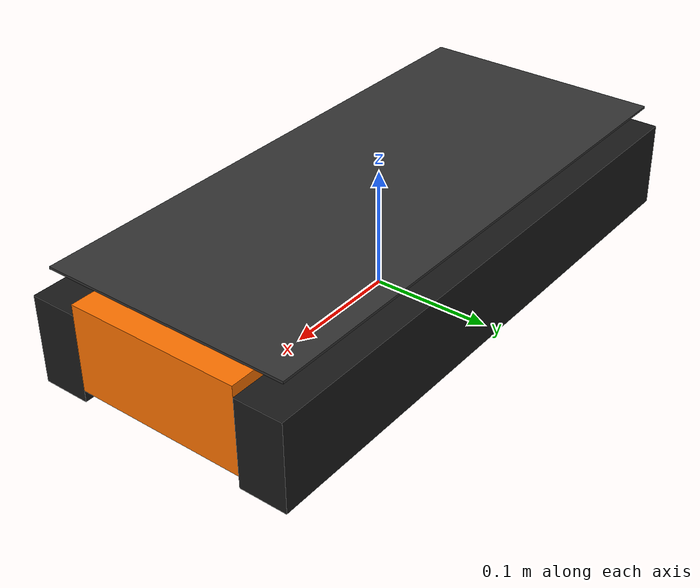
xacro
<?xml version="1.0"?>
<robot name="tracked_robot" xmlns:xacro="http://www.ros.org/wiki/xacro">

  <material name="Orange"><color rgba="1.0 0.45 0.0 1.0"/></material>
  <material name="Black"><color rgba="0.1 0.1 0.1 1.0"/></material>
  <material name="Steel"><color rgba="0.75 0.75 0.8 1.0"/></material>
  <material name="Rubber"><color rgba="0.2 0.2 0.2 1.0"/></material>

  <link name="base_footprint"/>
  <joint name="base_joint" type="fixed">
    <parent link="base_footprint"/>
    <child link="base_link"/>
    <origin xyz="0 0 0" rpy="0 0 0"/>
  </joint>

  <!-- ================= ОСНОВНОЙ КОРПУС ================= -->
  <!-- Размеры по ТЗ: Длина 492 мм, Ширина 225 мм, Высота шасси 93 мм (с подушкой 95 мм) -->
  <link name="base_link">
    <!-- Визуальный корпус -->
    <visual>
      <origin xyz="0 0 0.0465"/>
      <geometry><box size="0.492 0.145 0.073"/></geometry>
      <material name="Orange"/>
    </visual>
    <!-- Левая гусеничная балка (высота 74 мм) -->
    <visual>
      <origin xyz="0 0.0925 0.037"/>
      <geometry><box size="0.492 0.04 0.074"/></geometry>
      <material name="Black"/>
    </visual>
    <!-- Правая гусеничная балка (высота 74 мм) -->
    <visual>
      <origin xyz="0 -0.0925 0.037"/>
      <geometry><box size="0.492 0.04 0.074"/></geometry>
      <material name="Black"/>
    </visual>

    <!-- Коллизия корпуса: ширина 216 мм для гарантированного отсутствия заклинивания в проёме 227 мм -->
    <collision>
      <origin xyz="0 0 0.0465"/>
      <geometry><box size="0.488 0.216 0.073"/></geometry>
    </collision>

    <inertial>
      <origin xyz="0 0 0.045"/>
      <mass value="25.0"/>
      <inertia ixx="0.15" ixy="0" ixz="0" iyy="0.55" iyz="0" izz="0.65"/>
    </inertial>
  </link>

  <!-- Скользящие борта шасси (тефлон, чтобы не залипать на деревянных шашках поддона) -->
  <gazebo reference="base_link">
    <mu1>0.05</mu1>
    <mu2>0.05</mu2>
  </gazebo>

  <!-- ================= ПРИВОДНЫЕ КОЛЕСА (СКРЫТЫ В ГУСЕНИЦАХ) ================= -->
  <xacro:macro name="track_wheel" params="name x y">
    <link name="${name}_link">
      <collision>
        <origin rpy="${pi/2} 0 0"/>
        <geometry><cylinder radius="0.037" length="0.038"/></geometry>
      </collision>
      <inertial>
        <mass value="1.0"/>
        <inertia ixx="0.001" ixy="0" ixz="0" iyy="0.001" iyz="0" izz="0.001"/>
      </inertial>
    </link>

    <joint name="${name}_joint" type="continuous">
      <parent link="base_link"/>
      <child link="${name}_link"/>
      <origin xyz="${x} ${y} 0.037"/>
      <axis xyz="0 1 0"/>
    </joint>

    <gazebo reference="${name}_link">
      <mu1>1.8</mu1>
      <mu2>1.8</mu2>
    </gazebo>
  </xacro:macro>

  <xacro:track_wheel name="wheel_fl" x="0.18" y="0.0925"/>
  <xacro:track_wheel name="wheel_rl" x="-0.18" y="0.0925"/>
  <xacro:track_wheel name="wheel_fr" x="0.18" y="-0.0925"/>
  <xacro:track_wheel name="wheel_rr" x="-0.18" y="-0.0925"/>

  <!-- ================= ПНЕВМОПОДЪЕМНИК ================= -->
  <!-- Высота в сложенном виде: 2 мм (с 93 мм до 95 мм). Ход: 45 мм -->
  <link name="lift_plate_link">
    <visual>
      <origin xyz="0 0 0.001"/>
      <geometry><box size="0.470 0.210 0.002"/></geometry>
      <material name="Rubber"/>
    </visual>
    <collision>
      <origin xyz="0 0 0.001"/>
      <geometry><box size="0.470 0.210 0.002"/></geometry>
    </collision>
    <inertial>
      <mass value="3.0"/>
      <inertia ixx="0.01" ixy="0" ixz="0" iyy="0.05" iyz="0" izz="0.06"/>
    </inertial>
  </link>

  <joint name="lift_joint" type="prismatic">
    <parent link="base_link"/>
    <child link="lift_plate_link"/>
    <!-- Установлен ровно на отметке 93 мм от пола: 93 + 2 = 95 мм общая высота -->
    <origin xyz="0 0 0.093"/>
    <axis xyz="0 0 1"/>
    <!-- Ход от 0 до 45 мм с усилием пневматики 4000 Н (грузоподъемность > 300 кг) -->
    <limit lower="0.0" upper="0.045" effort="4000" velocity="0.04"/>
    <dynamics damping="80.0" friction="5.0"/>
  </joint>

  <!-- Высокое трение площадки, чтобы поддон не соскальзывал при подъёме -->
  <gazebo reference="lift_plate_link">
    <mu1>2.0</mu1>
    <mu2>2.0</mu2>
  </gazebo>

  <!-- ================= ПЛАГИНЫ ДЛЯ GAZEBO HARMONIC ================= -->
  <gazebo>
    <plugin filename="gz-sim-diff-drive-system" name="gz::sim::systems::DiffDrive">
      <left_joint>wheel_fl_joint</left_joint>
      <left_joint>wheel_rl_joint</left_joint>
      <right_joint>wheel_fr_joint</right_joint>
      <right_joint>wheel_rr_joint</right_joint>
      <wheel_separation>0.185</wheel_separation>
      <wheel_radius>0.037</wheel_radius>
      <odom_publish_frequency>50</odom_publish_frequency>
      <max_linear_acceleration>1.0</max_linear_acceleration>
      <min_linear_acceleration>-1.0</min_linear_acceleration>
      <max_angular_acceleration>2.0</max_angular_acceleration>
      <min_angular_acceleration>-2.0</min_angular_acceleration>
      <max_velocity>0.6</max_velocity>
      <topic>/cmd_vel</topic>
      <odom_topic>/odom</odom_topic>
      <tf_topic>/tf</tf_topic>
      <frame_id>odom</frame_id>
      <child_frame_id>base_footprint</child_frame_id>
    </plugin>

    <plugin filename="gz-sim-joint-position-controller-system" name="gz::sim::systems::JointPositionController">
      <joint_name>lift_joint</joint_name>
      <topic>/lift_cmd</topic>
      <p_gain>10000.0</p_gain>
      <i_gain>500.0</i_gain>
      <d_gain>800.0</d_gain>
      <cmd_max>4000.0</cmd_max>
      <cmd_min>-1000.0</cmd_min>
    </plugin>

    <plugin filename="gz-sim-joint-state-publisher-system" name="gz::sim::systems::JointStatePublisher">
      <topic>/joint_states</topic>
    </plugin>
  </gazebo>

</robot>
